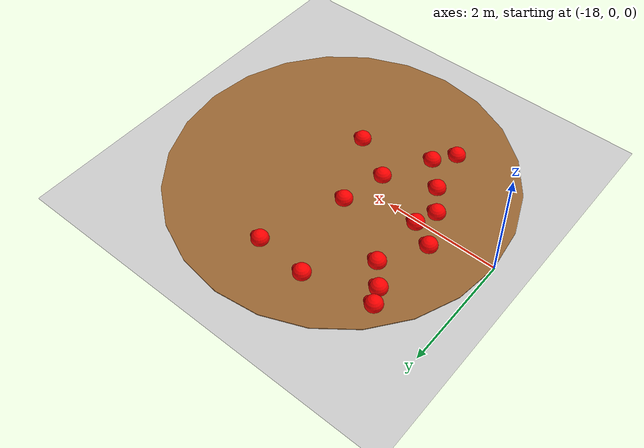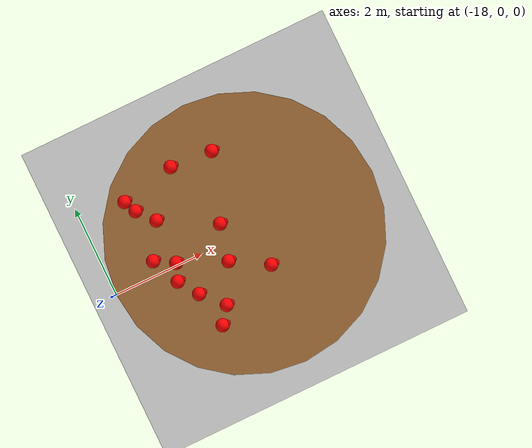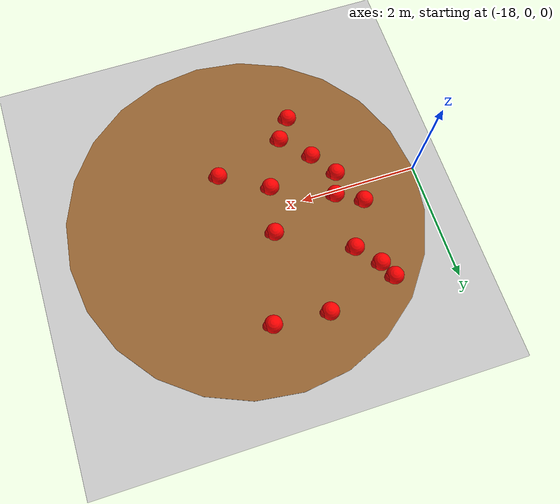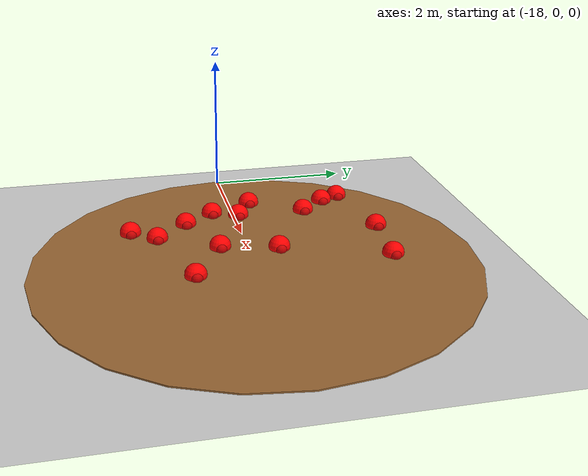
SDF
<sdf version="1.6">
 <world name="ant_colony_world">
  <include><uri>model://ground_plane</uri></include>
  <include><uri>model://sun</uri></include>
  <model name="nest">
   <pose>-15 0 0.01 0 0 0</pose>
   <static>true</static>
   <link name="nest_link">
    <visual name="visual">
     <geometry><cylinder><radius>3</radius><length>0.02</length></cylinder></geometry>
     <material>
      <ambient>0.6 0.4 0.2 1</ambient>
      <diffuse>0.6 0.4 0.2 1</diffuse>
      <specular>0.1 0.1 0.1 1</specular>
     </material>
    </visual>
    <collision name="collision">
     <geometry><cylinder><radius>3</radius><length>0.02</length></cylinder></geometry>
    </collision>
   </link>
  </model>
  <model name="ant_2">
   <pose>-16.415896310423804 -0.7385275973447585 0.05 0 0 0</pose>
   <link name="link">
    <visual name="body">
     <geometry><sphere><radius>0.15</radius></sphere></geometry>
     <material><ambient>1 0 0 1</ambient><diffuse>1 0 0 1</diffuse><specular>0.5 0.5 0.5 1</specular></material>
    </visual>
    <visual name="head">
     <pose>0.1 0 0 0 0 0</pose>
     <geometry><sphere><radius>0.08</radius></sphere></geometry>
     <material><ambient>0.8 0 0 1</ambient><diffuse>0.8 0 0 1</diffuse></material>
    </visual>
    <collision name="collision"><geometry><sphere><radius>0.15</radius></sphere></geometry></collision>
    <inertial>
     <mass>0.01</mass>
     <inertia><ixx>0.00001</ixx><iyy>0.00001</iyy><izz>0.00001</izz></inertia>
    </inertial>
   </link>
  </model>
  <model name="ant_3">
   <pose>-15.796092139559686 1.936853438596677 0.05 0 0 0</pose>
   <link name="link">
    <visual name="body">
     <geometry><sphere><radius>0.15</radius></sphere></geometry>
     <material><ambient>1 0 0 1</ambient><diffuse>1 0 0 1</diffuse><specular>0.5 0.5 0.5 1</specular></material>
    </visual>
    <visual name="head">
     <pose>0.1 0 0 0 0 0</pose>
     <geometry><sphere><radius>0.08</radius></sphere></geometry>
     <material><ambient>0.8 0 0 1</ambient><diffuse>0.8 0 0 1</diffuse></material>
    </visual>
    <collision name="collision"><geometry><sphere><radius>0.15</radius></sphere></geometry></collision>
    <inertial>
     <mass>0.01</mass>
     <inertia><ixx>0.00001</ixx><iyy>0.00001</iyy><izz>0.00001</izz></inertia>
    </inertial>
   </link>
  </model>
  <model name="ant_5">
   <pose>-16.991552101118057 1.6955422933163953 0.05 0 0 0</pose>
   <link name="link">
    <visual name="body">
     <geometry><sphere><radius>0.15</radius></sphere></geometry>
     <material><ambient>1 0 0 1</ambient><diffuse>1 0 0 1</diffuse><specular>0.5 0.5 0.5 1</specular></material>
    </visual>
    <visual name="head">
     <pose>0.1 0 0 0 0 0</pose>
     <geometry><sphere><radius>0.08</radius></sphere></geometry>
     <material><ambient>0.8 0 0 1</ambient><diffuse>0.8 0 0 1</diffuse></material>
    </visual>
    <collision name="collision"><geometry><sphere><radius>0.15</radius></sphere></geometry></collision>
    <inertial>
     <mass>0.01</mass>
     <inertia><ixx>0.00001</ixx><iyy>0.00001</iyy><izz>0.00001</izz></inertia>
    </inertial>
   </link>
  </model>
  <model name="ant_6">
   <pose>-16.55487454011577 1.0495572863737332 0.05 0 0 0</pose>
   <link name="link">
    <visual name="body">
     <geometry><sphere><radius>0.15</radius></sphere></geometry>
     <material><ambient>1 0 0 1</ambient><diffuse>1 0 0 1</diffuse><specular>0.5 0.5 0.5 1</specular></material>
    </visual>
    <visual name="head">
     <pose>0.1 0 0 0 0 0</pose>
     <geometry><sphere><radius>0.08</radius></sphere></geometry>
     <material><ambient>0.8 0 0 1</ambient><diffuse>0.8 0 0 1</diffuse></material>
    </visual>
    <collision name="collision"><geometry><sphere><radius>0.15</radius></sphere></geometry></collision>
    <inertial>
     <mass>0.01</mass>
     <inertia><ixx>0.00001</ixx><iyy>0.00001</iyy><izz>0.00001</izz></inertia>
    </inertial>
   </link>
  </model>
  <model name="ant_7">
   <pose>-15.991139865971165 -1.1994321791101572 0.05 0 0 0</pose>
   <link name="link">
    <visual name="body">
     <geometry><sphere><radius>0.15</radius></sphere></geometry>
     <material><ambient>1 0 0 1</ambient><diffuse>1 0 0 1</diffuse><specular>0.5 0.5 0.5 1</specular></material>
    </visual>
    <visual name="head">
     <pose>0.1 0 0 0 0 0</pose>
     <geometry><sphere><radius>0.08</radius></sphere></geometry>
     <material><ambient>0.8 0 0 1</ambient><diffuse>0.8 0 0 1</diffuse></material>
    </visual>
    <collision name="collision"><geometry><sphere><radius>0.15</radius></sphere></geometry></collision>
    <inertial>
     <mass>0.01</mass>
     <inertia><ixx>0.00001</ixx><iyy>0.00001</iyy><izz>0.00001</izz></inertia>
    </inertial>
   </link>
  </model>
  <model name="ant_8">
   <pose>-16.25548426140917 -1.5488788411274341 0.05 0 0 0</pose>
   <link name="link">
    <visual name="body">
     <geometry><sphere><radius>0.15</radius></sphere></geometry>
     <material><ambient>1 0 0 1</ambient><diffuse>1 0 0 1</diffuse><specular>0.5 0.5 0.5 1</specular></material>
    </visual>
    <visual name="head">
     <pose>0.1 0 0 0 0 0</pose>
     <geometry><sphere><radius>0.08</radius></sphere></geometry>
     <material><ambient>0.8 0 0 1</ambient><diffuse>0.8 0 0 1</diffuse></material>
    </visual>
    <collision name="collision"><geometry><sphere><radius>0.15</radius></sphere></geometry></collision>
    <inertial>
     <mass>0.01</mass>
     <inertia><ixx>0.00001</ixx><iyy>0.00001</iyy><izz>0.00001</izz></inertia>
    </inertial>
   </link>
  </model>
  <model name="ant_9">
   <pose>-15.556913840638043 -0.38523128238087656 0.05 0 0 0</pose>
   <link name="link">
    <visual name="body">
     <geometry><sphere><radius>0.15</radius></sphere></geometry>
     <material><ambient>1 0 0 1</ambient><diffuse>1 0 0 1</diffuse><specular>0.5 0.5 0.5 1</specular></material>
    </visual>
    <visual name="head">
     <pose>0.1 0 0 0 0 0</pose>
     <geometry><sphere><radius>0.08</radius></sphere></geometry>
     <material><ambient>0.8 0 0 1</ambient><diffuse>0.8 0 0 1</diffuse></material>
    </visual>
    <collision name="collision"><geometry><sphere><radius>0.15</radius></sphere></geometry></collision>
    <inertial>
     <mass>0.01</mass>
     <inertia><ixx>0.00001</ixx><iyy>0.00001</iyy><izz>0.00001</izz></inertia>
    </inertial>
   </link>
  </model>
  <model name="ant_10">
   <pose>-16.99039947614226 0.30544038145658226 0.05 0 0 0</pose>
   <link name="link">
    <visual name="body">
     <geometry><sphere><radius>0.15</radius></sphere></geometry>
     <material><ambient>1 0 0 1</ambient><diffuse>1 0 0 1</diffuse><specular>0.5 0.5 0.5 1</specular></material>
    </visual>
    <visual name="head">
     <pose>0.1 0 0 0 0 0</pose>
     <geometry><sphere><radius>0.08</radius></sphere></geometry>
     <material><ambient>0.8 0 0 1</ambient><diffuse>0.8 0 0 1</diffuse></material>
    </visual>
    <collision name="collision"><geometry><sphere><radius>0.15</radius></sphere></geometry></collision>
    <inertial>
     <mass>0.01</mass>
     <inertia><ixx>0.00001</ixx><iyy>0.00001</iyy><izz>0.00001</izz></inertia>
    </inertial>
   </link>
  </model>
  <model name="ant_11">
   <pose>-16.709312009433 -0.30703366296936263 0.05 0 0 0</pose>
   <link name="link">
    <visual name="body">
     <geometry><sphere><radius>0.15</radius></sphere></geometry>
     <material><ambient>1 0 0 1</ambient><diffuse>1 0 0 1</diffuse><specular>0.5 0.5 0.5 1</specular></material>
    </visual>
    <visual name="head">
     <pose>0.1 0 0 0 0 0</pose>
     <geometry><sphere><radius>0.08</radius></sphere></geometry>
     <material><ambient>0.8 0 0 1</ambient><diffuse>0.8 0 0 1</diffuse></material>
    </visual>
    <collision name="collision"><geometry><sphere><radius>0.15</radius></sphere></geometry></collision>
    <inertial>
     <mass>0.01</mass>
     <inertia><ixx>0.00001</ixx><iyy>0.00001</iyy><izz>0.00001</izz></inertia>
    </inertial>
   </link>
  </model>
  <model name="ant_12">
   <pose>-16.865976413137194 1.4187871382116564 0.05 0 0 0</pose>
   <link name="link">
    <visual name="body">
     <geometry><sphere><radius>0.15</radius></sphere></geometry>
     <material><ambient>1 0 0 1</ambient><diffuse>1 0 0 1</diffuse><specular>0.5 0.5 0.5 1</specular></material>
    </visual>
    <visual name="head">
     <pose>0.1 0 0 0 0 0</pose>
     <geometry><sphere><radius>0.08</radius></sphere></geometry>
     <material><ambient>0.8 0 0 1</ambient><diffuse>0.8 0 0 1</diffuse></material>
    </visual>
    <collision name="collision"><geometry><sphere><radius>0.15</radius></sphere></geometry></collision>
    <inertial>
     <mass>0.01</mass>
     <inertia><ixx>0.00001</ixx><iyy>0.00001</iyy><izz>0.00001</izz></inertia>
    </inertial>
   </link>
  </model>
  <model name="ant_15">
   <pose>-15.374704048651783 0.40547341650233726 0.05 0 0 0</pose>
   <link name="link">
    <visual name="body">
     <geometry><sphere><radius>0.15</radius></sphere></geometry>
     <material><ambient>1 0 0 1</ambient><diffuse>1 0 0 1</diffuse><specular>0.5 0.5 0.5 1</specular></material>
    </visual>
    <visual name="head">
     <pose>0.1 0 0 0 0 0</pose>
     <geometry><sphere><radius>0.08</radius></sphere></geometry>
     <material><ambient>0.8 0 0 1</ambient><diffuse>0.8 0 0 1</diffuse></material>
    </visual>
    <collision name="collision"><geometry><sphere><radius>0.15</radius></sphere></geometry></collision>
    <inertial>
     <mass>0.01</mass>
     <inertia><ixx>0.00001</ixx><iyy>0.00001</iyy><izz>0.00001</izz></inertia>
    </inertial>
   </link>
  </model>
  <model name="ant_16">
   <pose>-16.567042078717517 0.06533760161203483 0.05 0 0 0</pose>
   <link name="link">
    <visual name="body">
     <geometry><sphere><radius>0.15</radius></sphere></geometry>
     <material><ambient>1 0 0 1</ambient><diffuse>1 0 0 1</diffuse><specular>0.5 0.5 0.5 1</specular></material>
    </visual>
    <visual name="head">
     <pose>0.1 0 0 0 0 0</pose>
     <geometry><sphere><radius>0.08</radius></sphere></geometry>
     <material><ambient>0.8 0 0 1</ambient><diffuse>0.8 0 0 1</diffuse></material>
    </visual>
    <collision name="collision"><geometry><sphere><radius>0.15</radius></sphere></geometry></collision>
    <inertial>
     <mass>0.01</mass>
     <inertia><ixx>0.00001</ixx><iyy>0.00001</iyy><izz>0.00001</izz></inertia>
    </inertial>
   </link>
  </model>
  <model name="ant_17">
   <pose>-14.774789506206355 -0.842479106653168 0.05 0 0 0</pose>
   <link name="link">
    <visual name="body">
     <geometry><sphere><radius>0.15</radius></sphere></geometry>
     <material><ambient>1 0 0 1</ambient><diffuse>1 0 0 1</diffuse><specular>0.5 0.5 0.5 1</specular></material>
    </visual>
    <visual name="head">
     <pose>0.1 0 0 0 0 0</pose>
     <geometry><sphere><radius>0.08</radius></sphere></geometry>
     <material><ambient>0.8 0 0 1</ambient><diffuse>0.8 0 0 1</diffuse></material>
    </visual>
    <collision name="collision"><geometry><sphere><radius>0.15</radius></sphere></geometry></collision>
    <inertial>
     <mass>0.01</mass>
     <inertia><ixx>0.00001</ixx><iyy>0.00001</iyy><izz>0.00001</izz></inertia>
    </inertial>
   </link>
  </model>
  <model name="ant_19">
   <pose>-14.866819121077102 1.865527731805352 0.05 0 0 0</pose>
   <link name="link">
    <visual name="body">
     <geometry><sphere><radius>0.15</radius></sphere></geometry>
     <material><ambient>1 0 0 1</ambient><diffuse>1 0 0 1</diffuse><specular>0.5 0.5 0.5 1</specular></material>
    </visual>
    <visual name="head">
     <pose>0.1 0 0 0 0 0</pose>
     <geometry><sphere><radius>0.08</radius></sphere></geometry>
     <material><ambient>0.8 0 0 1</ambient><diffuse>0.8 0 0 1</diffuse></material>
    </visual>
    <collision name="collision"><geometry><sphere><radius>0.15</radius></sphere></geometry></collision>
    <inertial>
     <mass>0.01</mass>
     <inertia><ixx>0.00001</ixx><iyy>0.00001</iyy><izz>0.00001</izz></inertia>
    </inertial>
   </link>
  </model>
 </world>
</sdf>
